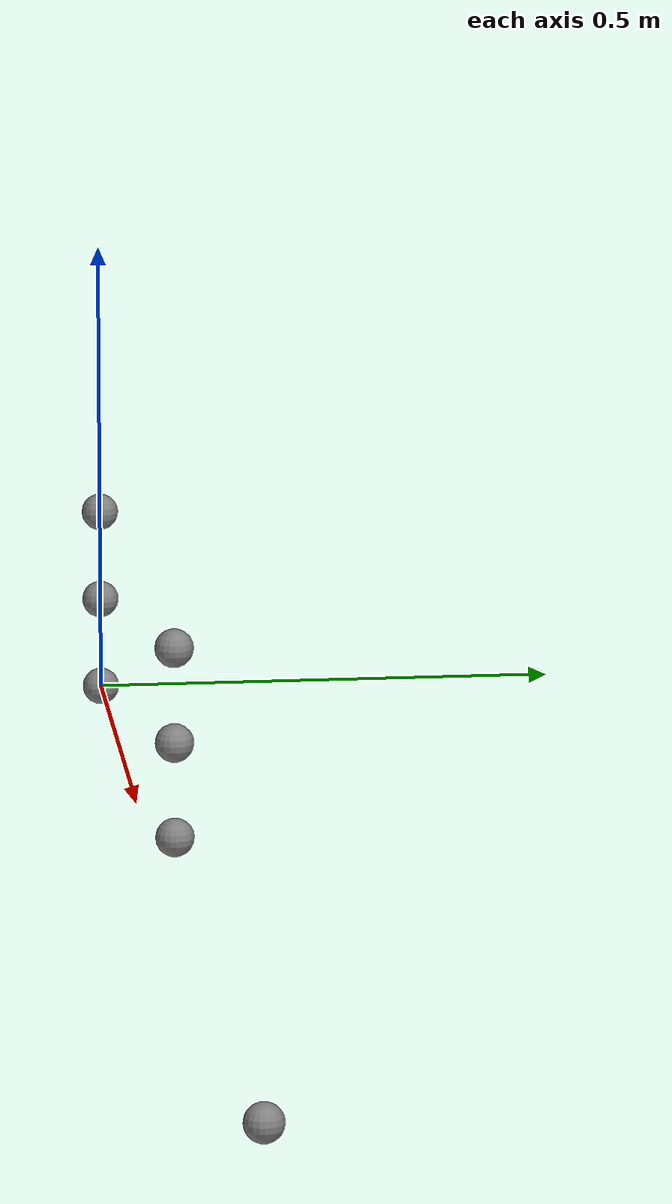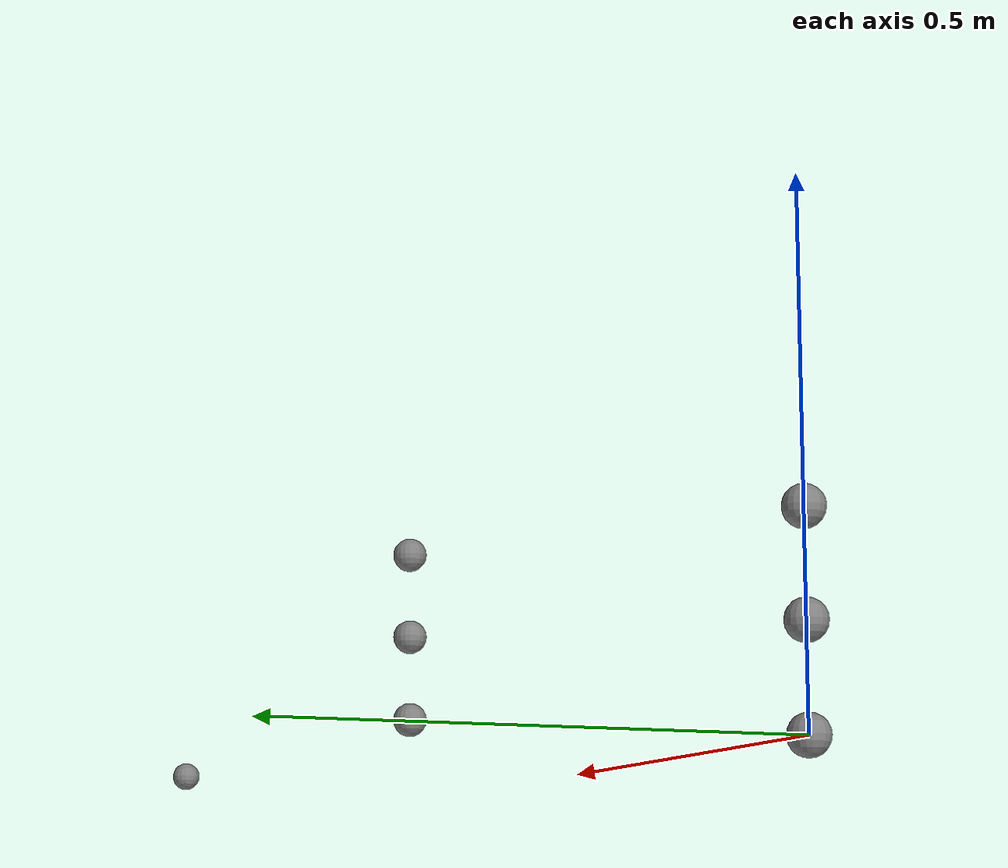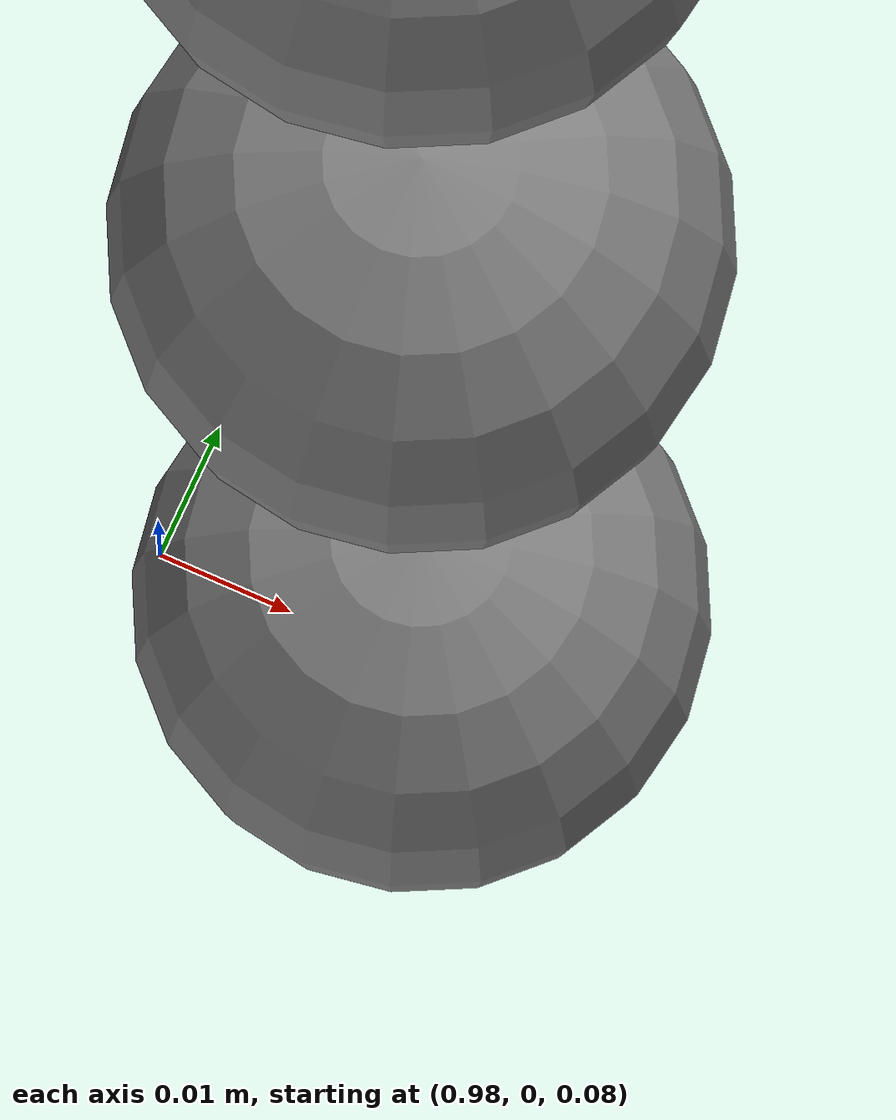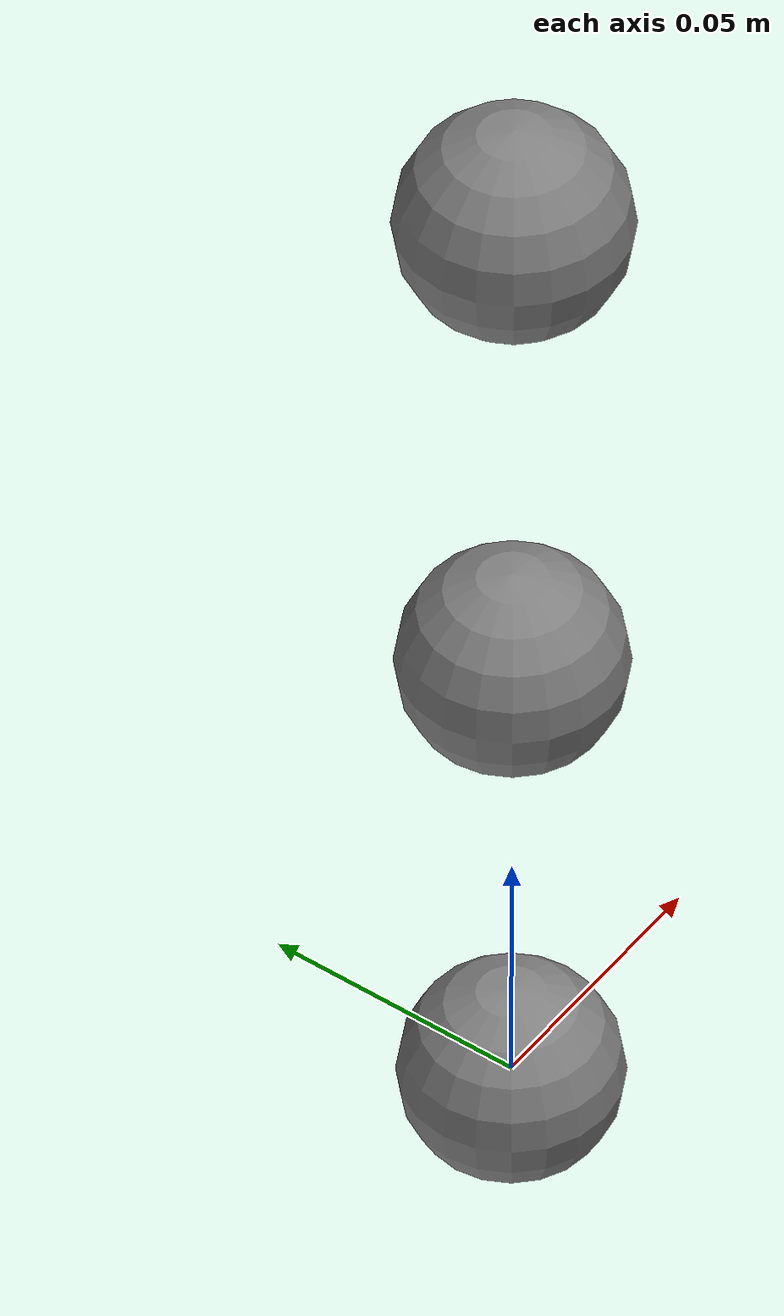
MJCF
<mujoco model="joint_edge_cases">
  <option timestep="0.002" gravity="0 0 0"/>
  <default>
    <geom type="sphere" size="0.02" mass="0.1"/>
  </default>
  <worldbody>
    <body name="root">
      <geom/>
      <body name="two_base">
        <body name="two_link" pos="0 0 0.1">
          <joint name="two_a" type="hinge" axis="0 0 1"/>
          <joint name="two_b" type="hinge" axis="0 1 0"/>
          <geom/>
          <body name="two_tip" pos="0 0 0.1">
            <geom/>
          </body>
        </body>
      </body>
      <body name="ball_base" pos="1 0 0">
        <body name="ball_l1" pos="0 0 0.1">
          <joint name="ball_h1" type="hinge" axis="0 0 1"/>
          <geom/>
          <body name="ball_l2" pos="0 0 0.1">
            <joint name="ball" type="ball"/>
            <geom/>
            <body name="ball_tip" pos="0 0 0.1">
              <joint name="ball_h2" type="hinge" axis="0 1 0"/>
              <geom/>
            </body>
          </body>
        </body>
      </body>
      <body name="plain_base" pos="2 0 0">
        <frame name="plain_frame" pos="0 0.1 0.2" euler="0 0 90"/>
        <body name="plain_tip" pos="0 0 0.1">
          <joint name="plain" type="hinge" axis="0 0 1"/>
          <geom/>
        </body>
      </body>
    </body>
  </worldbody>
</mujoco>
